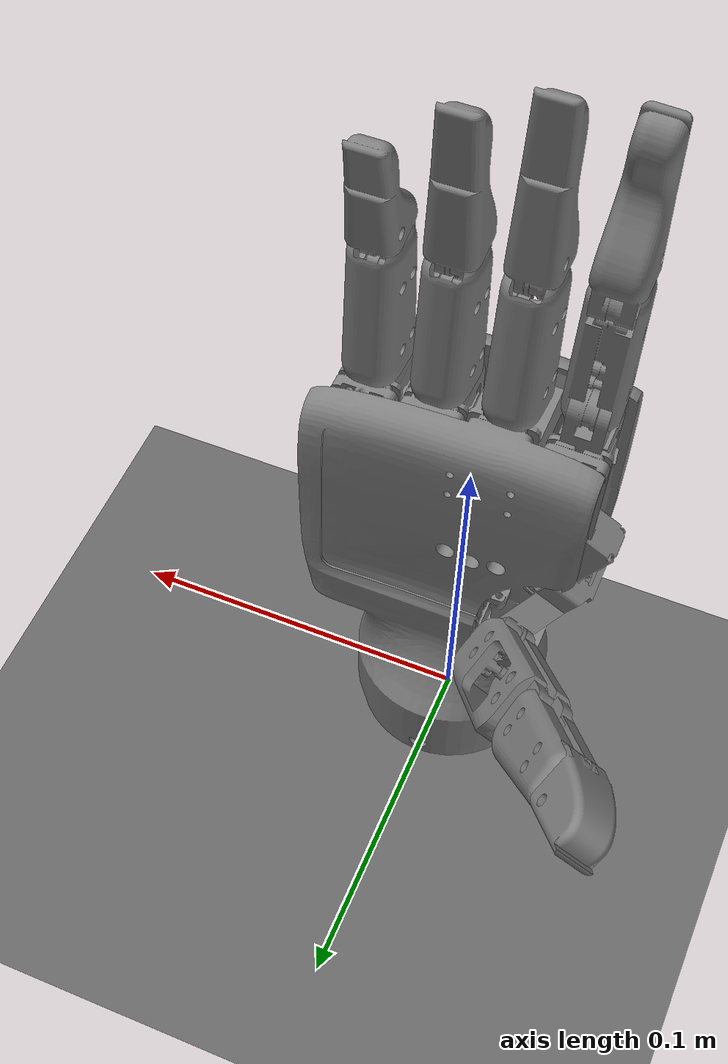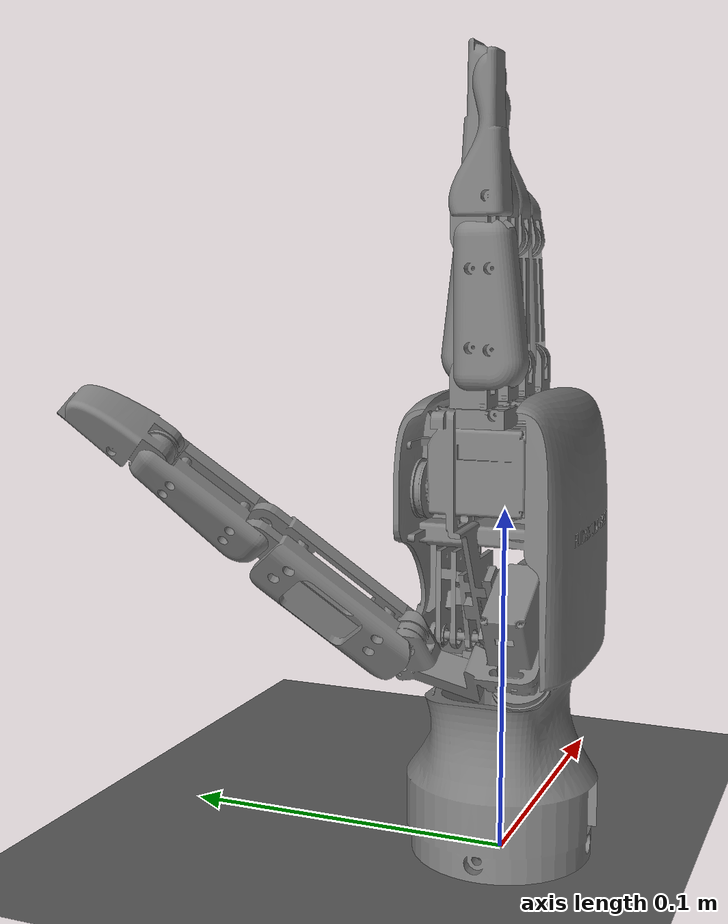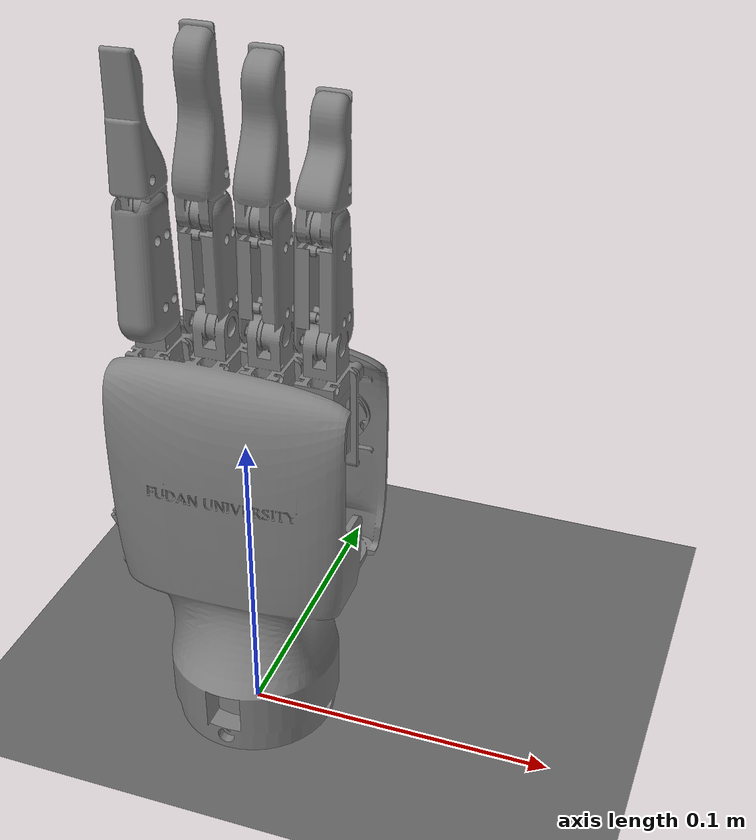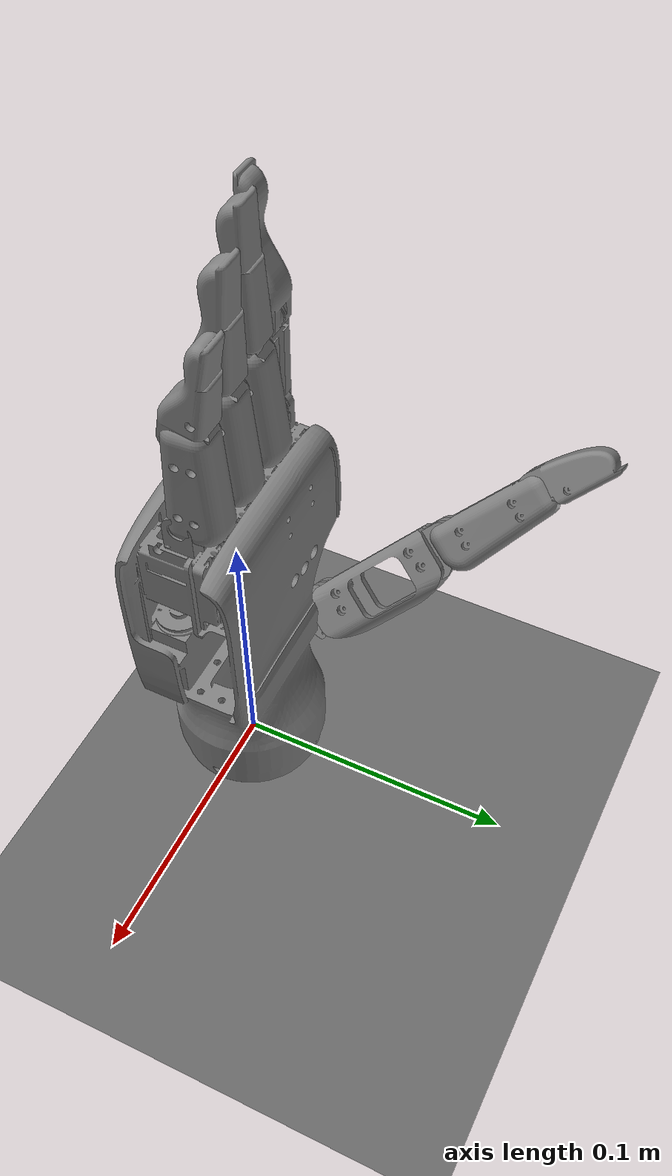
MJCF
<mujoco model="folding_hand_right">
  <default>
    <joint limited="true" damping="0.01" armature="0.01" frictionloss="0.01" />
    <geom condim="4" contype="1" conaffinity="15" friction="0.9 0.2 0.2" solref="0.001 2" />
    <motor ctrllimited="true" />
    <equality solref="0.001 2" />
    <default class="visualgeom">
      <geom material="visualgeom" condim="1" contype="0" conaffinity="0" />
    </default>
  </default>

  <compiler angle="radian" meshdir="meshes" eulerseq="zyx" autolimits="true" />

  <asset>
    <texture name="texplane" type="2d" builtin="checker" rgb1=".0 .0 .0" rgb2=".8 .8 .8" width="100" height="100" />
    <material name="matplane" reflectance="0." texture="texplane" texrepeat="1 1" texuniform="true" />
    <material name="" rgba="0.792156862745098 0.819607843137255 0.933333333333333 1" />
    <material name="default_material" rgba="0.7 0.7 0.7 1" />
    <mesh name="base_link.STL" file="base_link.STL" />
    <mesh name="ff_1.STL" file="ff_1.STL" />
    <mesh name="ff_2.STL" file="ff_2.STL" />
    <mesh name="ff_3.STL" file="ff_3.STL" />
    <mesh name="mf_1.STL" file="mf_1.STL" />
    <mesh name="mf_2.STL" file="mf_2.STL" />
    <mesh name="rf_1.STL" file="rf_1.STL" />
    <mesh name="rf_2.STL" file="rf_2.STL" />
    <mesh name="rf_3.STL" file="rf_3.STL" />
    <mesh name="lf_1.STL" file="lf_1.STL" />
    <mesh name="lf_2.STL" file="lf_2.STL" />
    <mesh name="lf_3.STL" file="lf_3.STL" />
    <mesh name="th_1.STL" file="th_1.STL" />
    <mesh name="th_2.STL" file="th_2.STL" />
    <mesh name="th_3.STL" file="th_3.STL" />
    <mesh name="th_4.STL" file="th_4.STL" />
  </asset>

  <worldbody>
    <light directional="true" diffuse="0.4 0.4 0.4" specular="0.1 0.1 0.1" pos="0 0 5.0" dir="0 0 -1" castshadow="false" />
    <light directional="true" diffuse="0.6 0.6 0.6" specular="0.2 0.2 0.2" pos="0 0 4" dir="0 0 -1" />
    <geom name="ground" type="plane" pos="0 0 0" size="10 10 0.001" quat="1 0 0 0" material="matplane" condim="3" conaffinity="15" />
    <body name="root" pos="0 0 -0.0" quat="1 0 0 0">
      <freejoint name="root" />
      <site name="root_site" pos="0 0 0" quat="1 0 0 0" />
      <body name="base_link" pos="0 0 0" quat="1 0 0 0">
        <inertial pos="0.00276118404102101 -0.00285774223692806 0.0615605479553047" quat="1.0 0.0 0.0 0.0" mass="0.103375780582453" diaginertia="3.11593509491742e-05 4.5003240518971e-05 3.85374175725486e-05" />
        <geom name="base_link_collision_0" pos="0 0 0" quat="1.0 0.0 0.0 0.0" type="mesh" mesh="base_link.STL" rgba="0 0 0 0" />
        <geom name="base_link_visual_0" pos="0 0 0" quat="1.0 0.0 0.0 0.0" material="" type="mesh" mesh="base_link.STL" />
        <body name="ff_1" pos="-0.0079 0.003355 0.064" quat="1.3492435731251315e-11 -3.6732051033217936e-06 0.9999999999865075 -3.6732051033217936e-06">
          <joint name="ff_1_joint" type="hinge" range="0 0" axis="0 1 0" />
          <inertial pos="0.0174276113143449 -0.0025880306270465 -0.051026172322912" quat="1.0 0.0 0.0 0.0" mass="0.00800116450103895" diaginertia="6.16375907626336e-07 7.00497772286988e-07 2.41679032104396e-07" />
          <geom name="ff_1_collision_0" pos="0 0 0" quat="1.0 0.0 0.0 0.0" type="mesh" mesh="ff_1.STL" rgba="0 0 0 0" />
          <geom name="ff_1_visual_0" pos="0 0 0" quat="1.0 0.0 0.0 0.0" material="" type="mesh" mesh="ff_1.STL" />
          <body name="ff_2" pos="0.020121 -0.0025 -0.075996" quat="0.5072199822139389 -0.507221845340388 0.49267235871351633 0.49267416840346234">
            <joint name="ff_2_joint" type="hinge" range="0 0" axis="0 1 0" />
            <inertial pos="0.0158422609179284 0.00109998639127984 -0.00505523801864458" quat="1.0 0.0 0.0 0.0" mass="0.00368074206825828" diaginertia="1.74635425164805e-07 4.75377212779051e-07 4.70138993869148e-07" />
            <geom name="ff_2_collision_0" pos="0 0 0" quat="1.0 0.0 0.0 0.0" type="mesh" mesh="ff_2.STL" rgba="0 0 0 0" />
            <geom name="ff_2_visual_0" pos="0 0 0" quat="1.0 0.0 0.0 0.0" material="" type="mesh" mesh="ff_2.STL" />
            <body name="ff_3" pos="0.035 0.0003 0" quat="1.0 0.0 0.0 0.0">
              <joint name="ff_3_joint" type="hinge" range="0 0" axis="0 1 0" />
              <inertial pos="0.0178367732030435 0.000999402970096486 -0.0022372319913799" quat="1.0 0.0 0.0 0.0" mass="0.00404959762041178" diaginertia="9.09224979928097e-08 6.26639694894412e-07 6.23321071228333e-07" />
              <geom name="ff_3_collision_0" pos="0 0 0" quat="1.0 0.0 0.0 0.0" type="mesh" mesh="ff_3.STL" rgba="0 0 0 0" />
              <geom name="ff_3_visual_0" pos="0 0 0" quat="1.0 0.0 0.0 0.0" material="" type="mesh" mesh="ff_3.STL" />
            </body>
          </body>
        </body>
        <body name="mf_1" pos="-0.009 0.000855 0.14055" quat="0.4999981633974483 0.49999999999662686 -0.49999999999662686 0.5000018366025516">
          <joint name="mf_1_joint" type="hinge" range="0 0" axis="0 1 0" />
          <inertial pos="0.0158422601570955 0.00129998597816512 -0.0050552380419905" quat="1.0 0.0 0.0 0.0" mass="0.00368074201522147" diaginertia="1.74635406284412e-07 4.75377216872989e-07 4.70139016490944e-07" />
          <geom name="mf_1_collision_0" pos="0 0 0" quat="1.0 0.0 0.0 0.0" type="mesh" mesh="mf_1.STL" rgba="0 0 0 0" />
          <geom name="mf_1_visual_0" pos="0 0 0" quat="1.0 0.0 0.0 0.0" material="" type="mesh" mesh="mf_1.STL" />
          <body name="mf_2" pos="0.035 0.0006 0" quat="1.0 0.0 0.0 0.0">
            <joint name="mf_2_joint" type="hinge" range="0 0" axis="0 1 0" />
            <inertial pos="0.0216169098719861 0.000904419663191184 -0.00217715663925655" quat="1.0 0.0 0.0 0.0" mass="0.00502242897630229" diaginertia="1.06662106139777e-07 9.59144418477493e-07 9.60297532986314e-07" />
            <geom name="mf_2_collision_0" pos="0 0 0" quat="1.0 0.0 0.0 0.0" type="mesh" mesh="mf_2.STL" rgba="0 0 0 0" />
            <geom name="mf_2_visual_0" pos="0 0 0" quat="1.0 0.0 0.0 0.0" material="" type="mesh" mesh="mf_2.STL" />
          </body>
        </body>
        <body name="rf_1" pos="-0.0079 0.012155 0.064" quat="1.3492435731251315e-11 -3.6732051033217936e-06 0.9999999999865075 -3.6732051033217936e-06">
          <joint name="rf_1_joint" type="hinge" range="0 0" axis="0 1 0" />
          <inertial pos="-0.0159906401844529 -0.0105600115967382 -0.051516391608172" quat="1.0 0.0 0.0 0.0" mass="0.00800969565306044" diaginertia="6.31281723456019e-07 6.95805064467012e-07 2.40136855524572e-07" />
          <geom name="rf_1_collision_0" pos="0 0 0" quat="1.0 0.0 0.0 0.0" type="mesh" mesh="rf_1.STL" rgba="0 0 0 0" />
          <geom name="rf_1_visual_0" pos="0 0 0" quat="1.0 0.0 0.0 0.0" material="" type="mesh" mesh="rf_1.STL" />
          <body name="rf_2" pos="-0.0161 -0.0113 -0.07655" quat="0.4999981633974483 0.49999999999662686 0.49999999999662686 -0.5000018366025516">
            <joint name="rf_2_joint" type="hinge" range="0 0" axis="0 1 0" />
            <inertial pos="0.0156935934157024 0.00109998713025121 -0.00549943217420239" quat="1.0 0.0 0.0 0.0" mass="0.0036807366322041" diaginertia="1.72904144168496e-07 4.75376819501147e-07 4.71869255601023e-07" />
            <geom name="rf_2_collision_0" pos="0 0 0" quat="1.0 0.0 0.0 0.0" type="mesh" mesh="rf_2.STL" rgba="0 0 0 0" />
            <geom name="rf_2_visual_0" pos="0 0 0" quat="1.0 0.0 0.0 0.0" material="" type="mesh" mesh="rf_2.STL" />
            <body name="rf_3" pos="0.034986 0.0004 -0.00098578" quat="1.0 0.0 0.0 0.0">
              <joint name="rf_3_joint" type="hinge" range="0 0" axis="0 1 0" />
              <inertial pos="0.018265888885159 0.000904759770016556 -0.00370738520761145" quat="1.0 0.0 0.0 0.0" mass="0.00499342460902789" diaginertia="1.15277519199432e-07 7.52048559497963e-07 7.39864170899251e-07" />
              <geom name="rf_3_collision_0" pos="0 0 0" quat="1.0 0.0 0.0 0.0" type="mesh" mesh="rf_3.STL" rgba="0 0 0 0" />
              <geom name="rf_3_visual_0" pos="0 0 0" quat="1.0 0.0 0.0 0.0" material="" type="mesh" mesh="rf_3.STL" />
            </body>
          </body>
        </body>
        <body name="lf_1" pos="-0.0079 0.016555 0.064" quat="1.3492435731251315e-11 -3.6732051033217936e-06 0.9999999999865075 -3.6732051033217936e-06">
          <joint name="lf_1_joint" type="hinge" range="0 0" axis="0 1 0" />
          <inertial pos="-0.0312849510272932 -0.0140312936490971 -0.0502369136670625" quat="1.0 0.0 0.0 0.0" mass="0.00836089652615313" diaginertia="6.91312748704694e-07 9.37745860657525e-07 4.62303222321355e-07" />
          <geom name="lf_1_collision_0" pos="0 0 0" quat="1.0 0.0 0.0 0.0" type="mesh" mesh="lf_1.STL" rgba="0 0 0 0" />
          <geom name="lf_1_visual_0" pos="0 0 0" quat="1.0 0.0 0.0 0.0" material="" type="mesh" mesh="lf_1.STL" />
          <body name="lf_2" pos="-0.0329 -0.0157 -0.07655" quat="0.4999981633974483 0.49999999999662686 0.49999999999662686 -0.5000018366025516">
            <joint name="lf_2_joint" type="hinge" range="0 0" axis="0 1 0" />
            <inertial pos="0.0155519171680911 0.000899988158834936 -0.00588816520024507" quat="1.0 0.0 0.0 0.0" mass="0.0036807319075368" diaginertia="1.71769313017517e-07 4.75376475908662e-07 4.73003192113371e-07" />
            <geom name="lf_2_collision_0" pos="0 0 0" quat="1.0 0.0 0.0 0.0" type="mesh" mesh="lf_2.STL" rgba="0 0 0 0" />
            <geom name="lf_2_visual_0" pos="0 0 0" quat="1.0 0.0 0.0 0.0" material="" type="mesh" mesh="lf_2.STL" />
            <body name="lf_3" pos="0.034951 -0.0001 -0.0018559" quat="1.0 0.0 0.0 0.0">
              <joint name="lf_3_joint" type="hinge" range="0 0" axis="0 1 0" />
              <inertial pos="0.0136373816869327 0.000999137783326609 -0.00495198647252044" quat="1.0 0.0 0.0 0.0" mass="0.00323429827183613" diaginertia="9.71311360656645e-08 3.22738473259161e-07 2.95824799844708e-07" />
              <geom name="lf_3_collision_0" pos="0 0 0" quat="1.0 0.0 0.0 0.0" type="mesh" mesh="lf_3.STL" rgba="0 0 0 0" />
              <geom name="lf_3_visual_0" pos="0 0 0" quat="1.0 0.0 0.0 0.0" material="" type="mesh" mesh="lf_3.STL" />
            </body>
          </body>
        </body>
        <body name="th_1" pos="-0.0079 -0.001045 0.064" quat="1.3492435731251315e-11 -3.6732051033217936e-06 0.9999999999865075 -3.6732051033217936e-06">
          <joint name="th_1_joint" type="hinge" range="0 0" axis="0 1 0" />
          <inertial pos="0.0137524610845284 -0.00388692531484706 -0.00399815691934079" quat="1.0 0.0 0.0 0.0" mass="0.0085862447602651" diaginertia="4.86393167138675e-07 4.66658280466237e-07 5.71403929448824e-07" />
          <geom name="th_1_collision_0" pos="0 0 0" quat="1.0 0.0 0.0 0.0" type="mesh" mesh="th_1.STL" rgba="0 0 0 0" />
          <geom name="th_1_visual_0" pos="0 0 0" quat="1.0 0.0 0.0 0.0" material="" type="mesh" mesh="th_1.STL" />
          <body name="th_2" pos="0.01364 0.02189 -0.0017481" quat="0.6142010687513615 -0.6142033248420053 0.3503643967958696 0.3503656837585236">
            <joint name="th_2_joint" type="hinge" range="0 0" axis="0 1 0" />
            <inertial pos="0.0127004115106669 0.000899925159810369 0.021103551602678" quat="1.0 0.0 0.0 0.0" mass="0.00484700233885311" diaginertia="7.68869476994104e-07 1.55377159306767e-06 1.02745220346099e-06" />
            <geom name="th_2_collision_0" pos="0 0 0" quat="1.0 0.0 0.0 0.0" type="mesh" mesh="th_2.STL" rgba="0 0 0 0" />
            <geom name="th_2_visual_0" pos="0 0 0" quat="1.0 0.0 0.0 0.0" material="" type="mesh" mesh="th_2.STL" />
            <body name="th_3" pos="0.036109 -0.0001 0.036072" quat="1.0 0.0 0.0 0.0">
              <joint name="th_3_joint" type="hinge" range="0 0" axis="0 1 0" />
              <inertial pos="0.00799399367852193 0.00100001344203523 0.0145817963066114" quat="1.0 0.0 0.0 0.0" mass="0.0036807341199548" diaginertia="2.80148855351827e-07 4.75376345730277e-07 3.64623294368966e-07" />
              <geom name="th_3_collision_0" pos="0 0 0" quat="1.0 0.0 0.0 0.0" type="mesh" mesh="th_3.STL" rgba="0 0 0 0" />
              <geom name="th_3_visual_0" pos="0 0 0" quat="1.0 0.0 0.0 0.0" material="" type="mesh" mesh="th_3.STL" />
              <body name="th_4" pos="0.025359 0.0001 0.024123" quat="1.0 0.0 0.0 0.0">
                <joint name="th_4_joint" type="hinge" range="0 0" axis="0 1 0" />
                <inertial pos="0.00729876168262759 0.00109078776438153 0.0100298513252921" quat="1.0 0.0 0.0 0.0" mass="0.00281885774752767" diaginertia="1.52207777642241e-07 1.90128277126092e-07 1.03333952624484e-07" />
                <geom name="th_4_collision_0" pos="0 0 0" quat="1.0 0.0 0.0 0.0" type="mesh" mesh="th_4.STL" rgba="0 0 0 0" />
                <geom name="th_4_visual_0" pos="0 0 0" quat="1.0 0.0 0.0 0.0" material="" type="mesh" mesh="th_4.STL" />
              </body>
            </body>
          </body>
        </body>
      </body>
    </body>
  </worldbody>

  <actuator>
    <position name="ff_1_joint_ctrl" joint="ff_1_joint" forcerange="-0.00000000 0.00000000" forcelimited="true" ctrlrange="0.0 0.0" ctrllimited="true" />
    <position name="ff_2_joint_ctrl" joint="ff_2_joint" forcerange="-0.00000000 0.00000000" forcelimited="true" ctrlrange="0.0 0.0" ctrllimited="true" />
    <position name="ff_3_joint_ctrl" joint="ff_3_joint" forcerange="-0.00000000 0.00000000" forcelimited="true" ctrlrange="0.0 0.0" ctrllimited="true" />
    <position name="mf_1_joint_ctrl" joint="mf_1_joint" forcerange="-0.00000000 0.00000000" forcelimited="true" ctrlrange="0.0 0.0" ctrllimited="true" />
    <position name="mf_2_joint_ctrl" joint="mf_2_joint" forcerange="-0.00000000 0.00000000" forcelimited="true" ctrlrange="0.0 0.0" ctrllimited="true" />
    <position name="rf_1_joint_ctrl" joint="rf_1_joint" forcerange="-0.00000000 0.00000000" forcelimited="true" ctrlrange="0.0 0.0" ctrllimited="true" />
    <position name="rf_2_joint_ctrl" joint="rf_2_joint" forcerange="-0.00000000 0.00000000" forcelimited="true" ctrlrange="0.0 0.0" ctrllimited="true" />
    <position name="rf_3_joint_ctrl" joint="rf_3_joint" forcerange="-0.00000000 0.00000000" forcelimited="true" ctrlrange="0.0 0.0" ctrllimited="true" />
    <position name="lf_1_joint_ctrl" joint="lf_1_joint" forcerange="-0.00000000 0.00000000" forcelimited="true" ctrlrange="0.0 0.0" ctrllimited="true" />
    <position name="lf_2_joint_ctrl" joint="lf_2_joint" forcerange="-0.00000000 0.00000000" forcelimited="true" ctrlrange="0.0 0.0" ctrllimited="true" />
    <position name="lf_3_joint_ctrl" joint="lf_3_joint" forcerange="-0.00000000 0.00000000" forcelimited="true" ctrlrange="0.0 0.0" ctrllimited="true" />
    <position name="th_1_joint_ctrl" joint="th_1_joint" forcerange="-0.00000000 0.00000000" forcelimited="true" ctrlrange="0.0 0.0" ctrllimited="true" />
    <position name="th_2_joint_ctrl" joint="th_2_joint" forcerange="-0.00000000 0.00000000" forcelimited="true" ctrlrange="0.0 0.0" ctrllimited="true" />
    <position name="th_3_joint_ctrl" joint="th_3_joint" forcerange="-0.00000000 0.00000000" forcelimited="true" ctrlrange="0.0 0.0" ctrllimited="true" />
    <position name="th_4_joint_ctrl" joint="th_4_joint" forcerange="-0.00000000 0.00000000" forcelimited="true" ctrlrange="0.0 0.0" ctrllimited="true" />
  </actuator>

  <sensor>
    <framepos name="base_link_pos" objtype="site" objname="root_site" />
    <framequat name="base_link_quat" objtype="site" objname="root_site" />
    <framelinvel name="base_link_vel" objtype="site" objname="root_site" />
    <frameangvel name="base_link_ang_vel" objtype="site" objname="root_site" />
  </sensor>
</mujoco>
